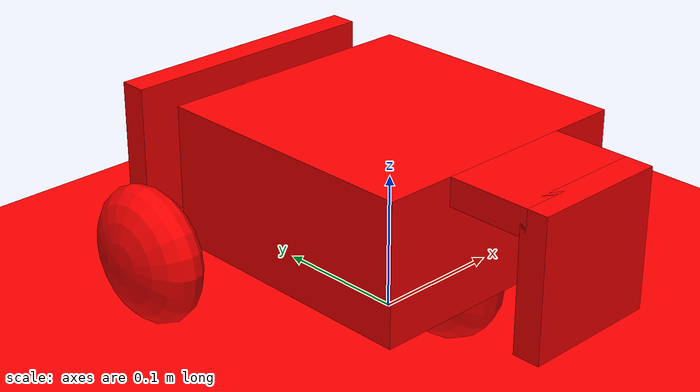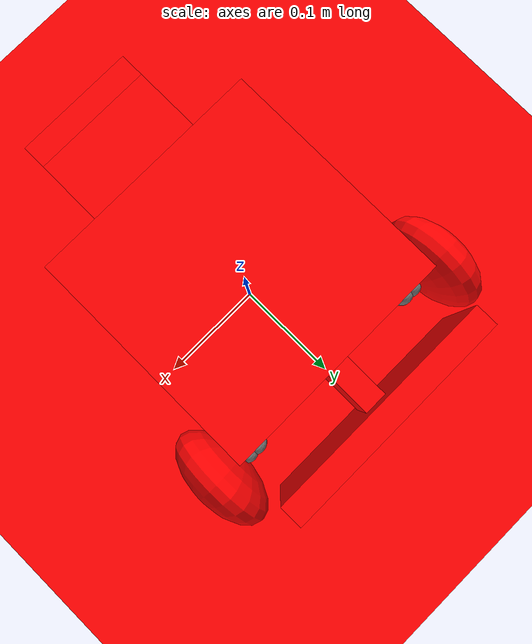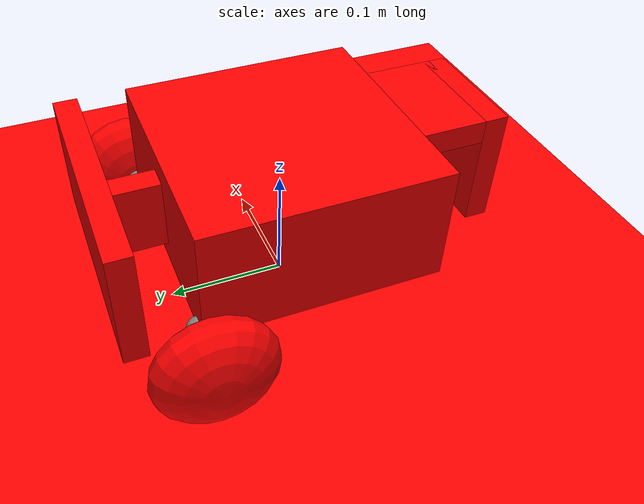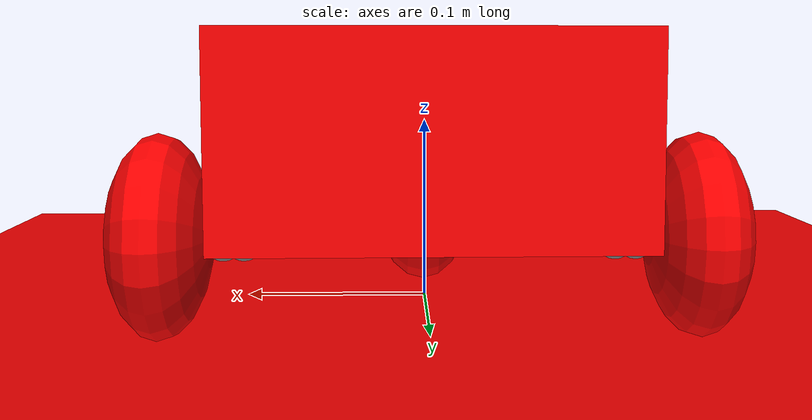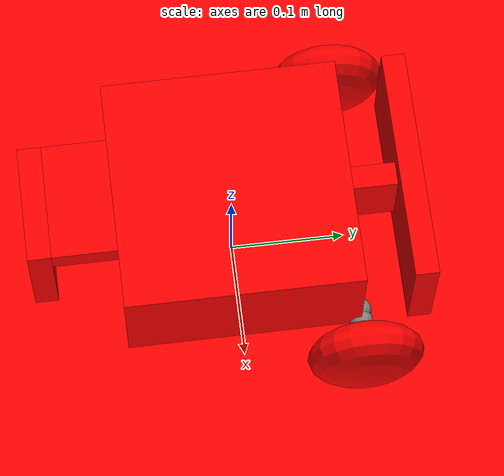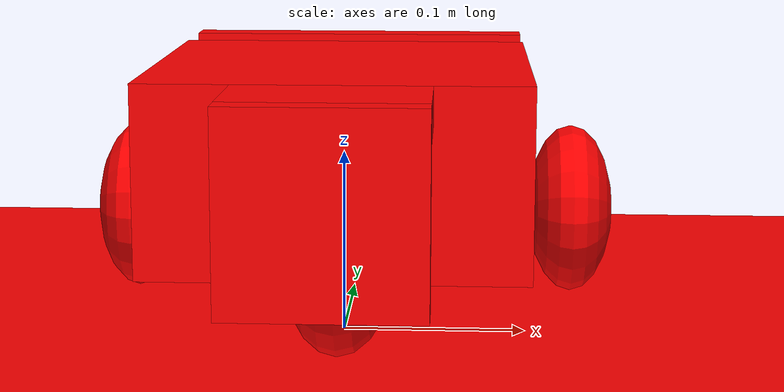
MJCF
<mujoco>
    <size njmax="3000" nconmax="1000"/>
    <option timestep="0.004"/>
    <default>
        <geom condim="6" density="5" rgba="1 0 0 1" size=".05" type="sphere"/>
        <joint damping=".002"/>
        <motor ctrlrange="-1 1" ctrllimited="true" forcerange="-.05 .05" forcelimited="true"/>
        <velocity ctrlrange="0 1" ctrllimited="true" forcerange="-.05 .05" forcelimited="true"/>
        <site size="0.032" type="sphere"/>
    </default>
    <worldbody>
        <geom name="floor" size="5 5 0.1" type="plane" condim="6"/>
        <body name="robot" pos="0 0 .1">
            <site name="robot" pos="0 0 0"/>
            <camera name="vision" pos="0 0.1 .2" xyaxes="-1 0 0 0 -.4 1"/>
            <joint type="free" name="robot" damping="0"/>
            <geom name="robot" type="box" size=".1 .1 .05"/>
            <geom name="back_bumper" type="box" pos="0 .15 0" size=".1 .01 .05"/>
            <geom name="back_connector" type="box" pos="0 .125 0" size=".01 .025 .03"/>
            <geom name="front_bumper" type="box" pos="0 -.165 0" size=".05 .01 .05"/>
            <geom name="front_connector" type="box" pos="0 -.13 .04" size=".05 .03 .01"/>
            <body name="left" pos="-.1 .1 -.05">
                <joint type="hinge" name="left" axis="1 0 0"/>
                <geom type="ellipsoid" name="left" size="0.05" fromto="-.055 0 0 -0.005 0 0"/>
                	<site size=".01" pos=".01 0 .002"/>
			<site size=".01" pos=".01 0 -.002"/>
			<site size=".01" pos="0 0 .002"/>
			<site size=".01" pos="0 0 -.002"/>
            </body>
            <body name="right" pos=".1 .1 -.05">
                <joint type="hinge" name="right" axis="1 0 0"/>
                <geom type="ellipsoid" name="right" size="0.05" fromto="0.005 0 0 .055 0 0"/>
                	<site size=".01" pos="-.01 0 .002"/>
			<site size=".01" pos="-.01 0 -.002"/>
			<site size=".01" pos="0 0 .002"/>
			<site size=".01" pos="0 0 -.002"/>
            </body>
            <body name="rear" pos="0 -.1 -.05">
            	<joint name="x" type="hinge" axis="0 0 1" limited="true" range="-1 1"/>
            	<geom type="ellipsoid" name="rear" size="0.05" fromto="-0.03 0.05 0 .03 0.05 0"/>
            </body>
        </body>
    </worldbody>
    <tendon>
    	<fixed name="wheel_rod">
    		<joint joint="left" coef="1"/>
    		<joint joint="right" coef="1"/>
    	</fixed>
    </tendon>
    <sensor>

        <!-- Used for observation -->
        <accelerometer site="robot" name="accelerometer"/>
        <velocimeter site="robot" name="velocimeter"/>
        <gyro site="robot" name="gyro"/>
        <magnetometer site="robot" name="magnetometer"/>

        <!-- Used for intrinsic constraints -->
        <subtreecom body="robot" name="subtreecom"/>
        <subtreelinvel body="robot" name="subtreelinvel"/>
        <subtreeangmom body="robot" name="subtreeangmom"/>
    </sensor>
    <actuator>
        <motor gear="0.3 0 0 0 0 0" jointinparent="x" name="rear"/>
        <velocity gear="0.3" tendon="wheel_rod" name="forward"/>
    </actuator>
</mujoco>
